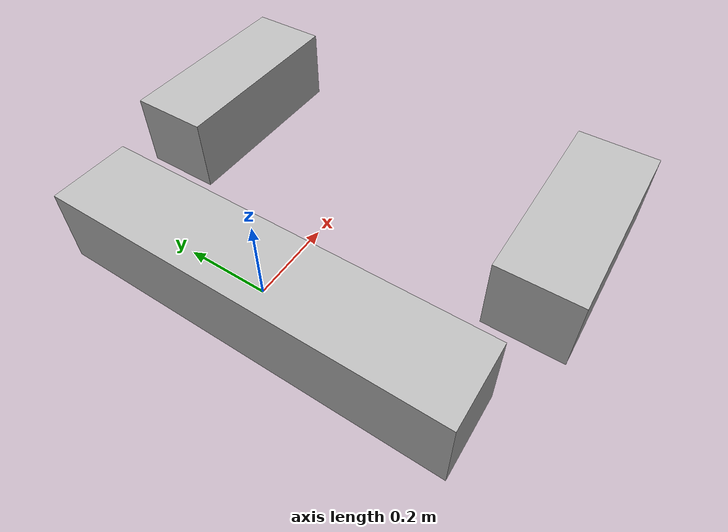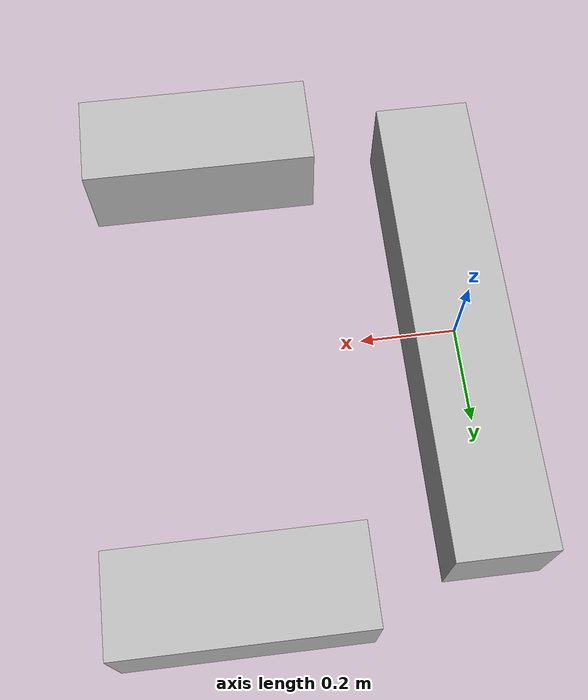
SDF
<?xml version="1.0" ?>
<!-- This file is originated from gazebo_auv_sim package by Gigmus: https://github.com/gigimus/gazebo-auv-sim -->
<sdf version="1.4">
    <model name="gripper">
        <link name="palm">
            <gravity>false</gravity>
            <inertial>
                <mass>0.01</mass>
            </inertial>
            <visual name='palm_vis'>
                <geometry>
                    <box>
                        <size>0.2 1 0.2</size>
                    </box>
                </geometry>
            </visual>

            <collision name='palm_col'>
                <geometry>
                    <box>
                        <size>0.2 1 0.2</size>
                    </box>
                </geometry>
            </collision>
        </link>

        <link name="left_finger">
            <gravity>false</gravity>
            <inertial>
                <mass>1</mass>
            </inertial>

            <pose>0.5 -0.5 0 0 0 0</pose>

            <visual name='left_finger_vis'>
                <geometry>
                    <box>
                        <size>0.5 0.2 0.2</size>
                    </box>
                </geometry>
            </visual>

            <collision name='left_finger_col'>
                <geometry>
                    <box>
                        <size>0.5 0.2 0.2</size>
                    </box>
                </geometry>
            </collision>
        </link>

        <link name="right_finger">
            <gravity>false</gravity>
            <inertial>
                <mass>1</mass>
            </inertial>

            <pose>0.5 0.5 0 0 0 0</pose>

            <visual name='right_finger_vis'>
                <geometry>
                    <box>
                        <size>0.5 0.2 0.2</size>
                    </box>
                </geometry>
            </visual>

            <collision name='right_finger_col'>
                <geometry>
                    <box>
                        <size>0.5 0.2 0.2</size>
                    </box>
                </geometry>
            </collision>
        </link>

        <joint name="l_finger_palm" type="prismatic">
            <child>left_finger</child>
            <parent>palm</parent>
            <axis>
                <limit>
                    <lower>-0.5</lower>
                    <upper>0.5</upper>
                </limit>
                <xyz>1 0 0</xyz>
            </axis>
        </joint>

        <joint name="r_finger_palm" type="prismatic">
            <child>right_finger</child>
            <parent>palm</parent>
            <axis>
                <limit>
                    <lower>-0.5</lower>
                    <upper>0.5</upper>
                </limit>
                <xyz>1 0 0</xyz>
            </axis>
        </joint>

        <gripper name="grasping">
            <gripper_link>right_finger</gripper_link>
            <gripper_link>left_finger</gripper_link>
            <palm_link>palm</palm_link>
        </gripper>
    </model>
</sdf>
